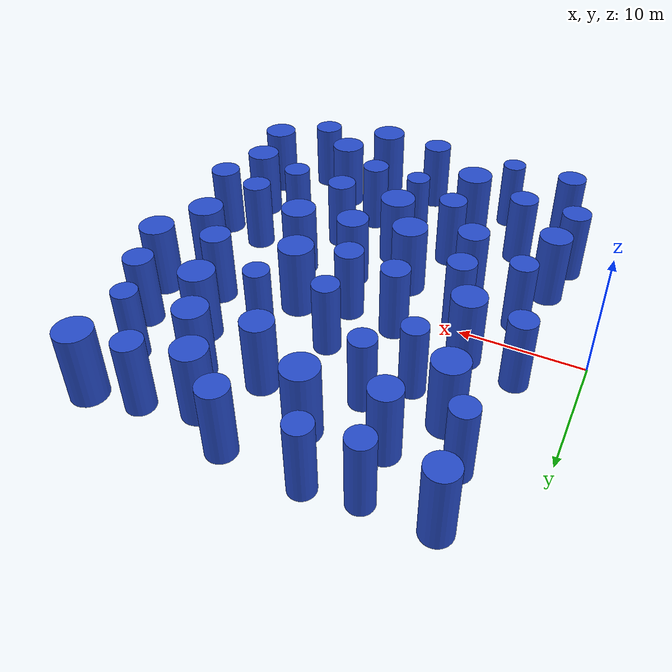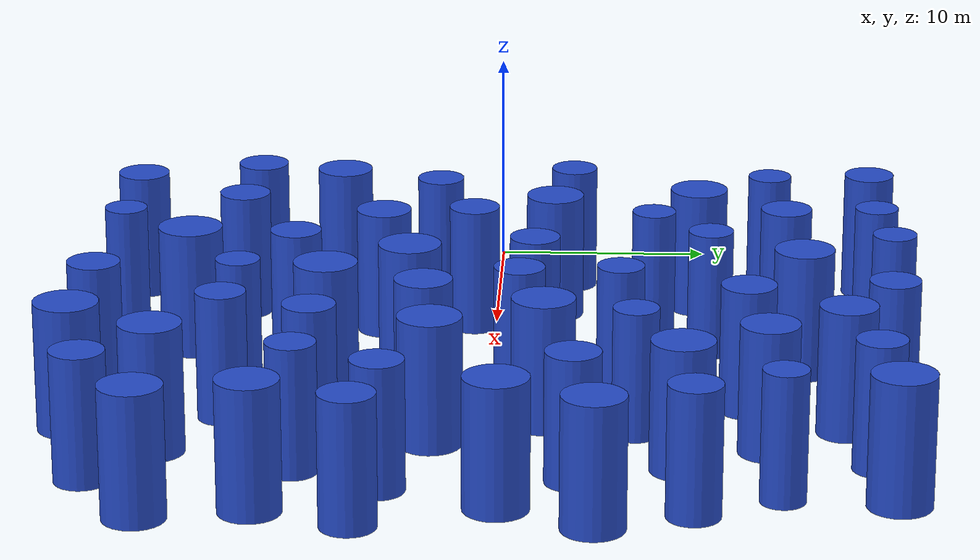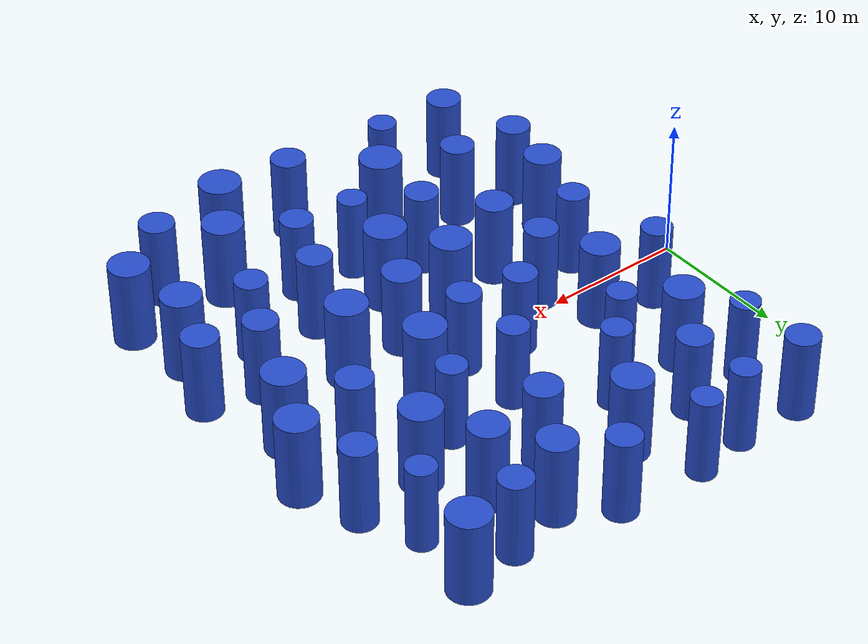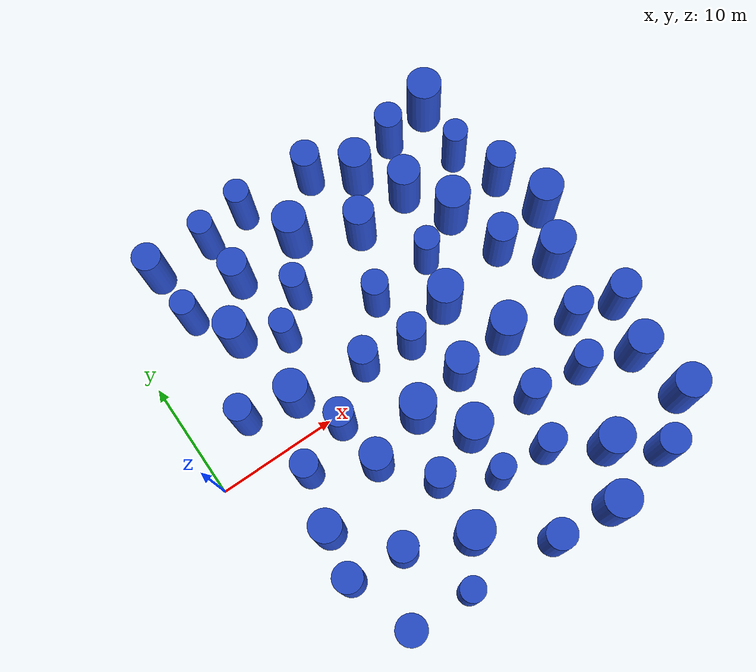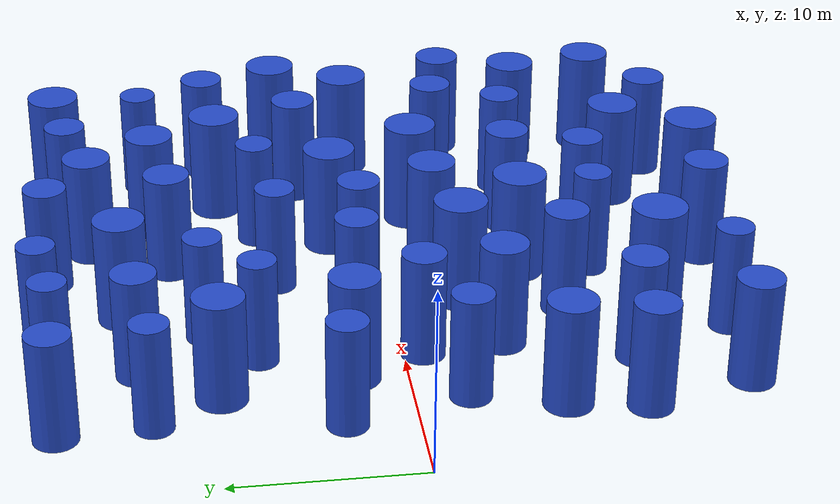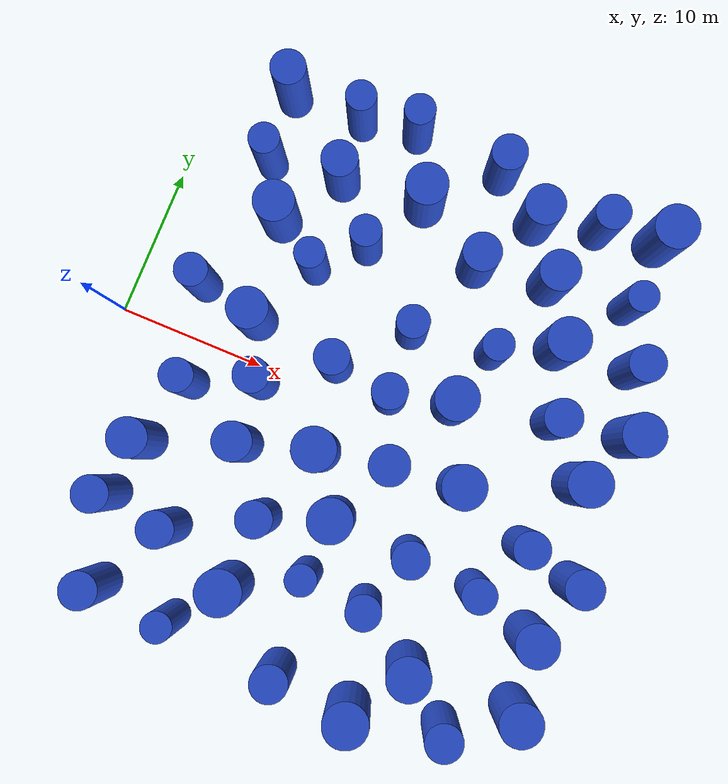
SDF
<sdf version="1.7">
 <world name="default">
  <model name="11">
   <static>1</static>
   <link name="link">
    <inertial>
     <mass>2</mass>
     <inertia><ixx>7.02995</ixx><ixy>0</ixy><ixz>0</ixz><iyy>7.02995</iyy><iyz>0</iyz><izz>2.0599</izz></inertia>
    </inertial>
    <collision name="collision">
     <geometry><cylinder><length>6</length><radius>1.43524</radius></cylinder></geometry>
     <surface><contact><collide_without_contact>1</collide_without_contact></contact></surface>
    </collision>
    <visual name="visual">
     <geometry><cylinder><length>6</length><radius>1.43524</radius></cylinder></geometry>
     <material>
      <script><uri>file://media/materials/scripts/gazebo.material</uri><name>Gazebo/Blue</name></script>
     </material>
    </visual>
    <gravity>0</gravity>
   </link>
   <pose>22.9935 2.50664 3 0 -0 0</pose>
  </model>
  <model name="13">
   <static>1</static>
   <link name="link">
    <inertial>
     <mass>2</mass>
     <inertia><ixx>6.67283</ixx><ixy>0</ixy><ixz>0</ixz><iyy>6.67283</iyy><iyz>0</iyz><izz>1.34566</izz></inertia>
    </inertial>
    <collision name="collision">
     <geometry><cylinder><length>6</length><radius>1.16003</radius></cylinder></geometry>
     <surface><contact><collide_without_contact>1</collide_without_contact></contact></surface>
    </collision>
    <visual name="visual">
     <geometry><cylinder><length>6</length><radius>1.16003</radius></cylinder></geometry>
     <material>
      <script><uri>file://media/materials/scripts/gazebo.material</uri><name>Gazebo/Blue</name></script>
     </material>
    </visual>
    <gravity>0</gravity>
   </link>
   <pose>14.8128 1.93175 3 0 -0 0</pose>
  </model>
  <model name="16">
   <static>1</static>
   <link name="link">
    <inertial>
     <mass>2</mass>
     <inertia><ixx>6.6557</ixx><ixy>0</ixy><ixz>0</ixz><iyy>6.6557</iyy><iyz>0</iyz><izz>1.3114</izz></inertia>
    </inertial>
    <collision name="collision">
     <geometry><cylinder><length>6</length><radius>1.14516</radius></cylinder></geometry>
     <surface><contact><collide_without_contact>1</collide_without_contact></contact></surface>
    </collision>
    <visual name="visual">
     <geometry><cylinder><length>6</length><radius>1.14516</radius></cylinder></geometry>
     <material>
      <script><uri>file://media/materials/scripts/gazebo.material</uri><name>Gazebo/Blue</name></script>
     </material>
    </visual>
    <gravity>0</gravity>
   </link>
   <pose>22.6505 -11.8133 3 0 -0 0</pose>
  </model>
  <model name="22">
   <static>1</static>
   <link name="link">
    <inertial>
     <mass>2</mass>
     <inertia><ixx>7.01181</ixx><ixy>0</ixy><ixz>0</ixz><iyy>7.01181</iyy><iyz>0</iyz><izz>2.02362</izz></inertia>
    </inertial>
    <collision name="collision">
     <geometry><cylinder><length>6</length><radius>1.42254</radius></cylinder></geometry>
     <surface><contact><collide_without_contact>1</collide_without_contact></contact></surface>
    </collision>
    <visual name="visual">
     <geometry><cylinder><length>6</length><radius>1.42254</radius></cylinder></geometry>
     <material>
      <script><uri>file://media/materials/scripts/gazebo.material</uri><name>Gazebo/Blue</name></script>
     </material>
    </visual>
    <gravity>0</gravity>
   </link>
   <pose>28.0346 8.60096 3 0 -0 0</pose>
  </model>
  <model name="24">
   <static>1</static>
   <link name="link">
    <inertial>
     <mass>2</mass>
     <inertia><ixx>6.90968</ixx><ixy>0</ixy><ixz>0</ixz><iyy>6.90968</iyy><iyz>0</iyz><izz>1.81936</izz></inertia>
    </inertial>
    <collision name="collision">
     <geometry><cylinder><length>6</length><radius>1.34884</radius></cylinder></geometry>
     <surface><contact><collide_without_contact>1</collide_without_contact></contact></surface>
    </collision>
    <visual name="visual">
     <geometry><cylinder><length>6</length><radius>1.34884</radius></cylinder></geometry>
     <material>
      <script><uri>file://media/materials/scripts/gazebo.material</uri><name>Gazebo/Blue</name></script>
     </material>
    </visual>
    <gravity>0</gravity>
   </link>
   <pose>8.75022 2.75537 3 0 -0 0</pose>
  </model>
  <model name="28">
   <static>1</static>
   <link name="link">
    <inertial>
     <mass>2</mass>
     <inertia><ixx>6.61083</ixx><ixy>0</ixy><ixz>0</ixz><iyy>6.61083</iyy><iyz>0</iyz><izz>1.22166</izz></inertia>
    </inertial>
    <collision name="collision">
     <geometry><cylinder><length>6</length><radius>1.10529</radius></cylinder></geometry>
     <surface><contact><collide_without_contact>1</collide_without_contact></contact></surface>
    </collision>
    <visual name="visual">
     <geometry><cylinder><length>6</length><radius>1.10529</radius></cylinder></geometry>
     <material>
      <script><uri>file://media/materials/scripts/gazebo.material</uri><name>Gazebo/Blue</name></script>
     </material>
    </visual>
    <gravity>0</gravity>
   </link>
   <pose>6.33318 -2.81082 3 0 -0 0</pose>
  </model>
  <model name="30">
   <static>1</static>
   <link name="link">
    <inertial>
     <mass>2</mass>
     <inertia><ixx>6.51988</ixx><ixy>0</ixy><ixz>0</ixz><iyy>6.51988</iyy><iyz>0</iyz><izz>1.03977</izz></inertia>
    </inertial>
    <collision name="collision">
     <geometry><cylinder><length>6</length><radius>1.01969</radius></cylinder></geometry>
     <surface><contact><collide_without_contact>1</collide_without_contact></contact></surface>
    </collision>
    <visual name="visual">
     <geometry><cylinder><length>6</length><radius>1.01969</radius></cylinder></geometry>
     <material>
      <script><uri>file://media/materials/scripts/gazebo.material</uri><name>Gazebo/Blue</name></script>
     </material>
    </visual>
    <gravity>0</gravity>
   </link>
   <pose>13.906 18.5337 3 0 -0 0</pose>
  </model>
  <model name="35">
   <static>1</static>
   <link name="link">
    <inertial>
     <mass>2</mass>
     <inertia><ixx>6.78663</ixx><ixy>0</ixy><ixz>0</ixz><iyy>6.78663</iyy><iyz>0</iyz><izz>1.57327</izz></inertia>
    </inertial>
    <collision name="collision">
     <geometry><cylinder><length>6</length><radius>1.2543</radius></cylinder></geometry>
     <surface><contact><collide_without_contact>1</collide_without_contact></contact></surface>
    </collision>
    <visual name="visual">
     <geometry><cylinder><length>6</length><radius>1.2543</radius></cylinder></geometry>
     <material>
      <script><uri>file://media/materials/scripts/gazebo.material</uri><name>Gazebo/Blue</name></script>
     </material>
    </visual>
    <gravity>0</gravity>
   </link>
   <pose>34.6176 -5.35558 3 0 -0 0</pose>
  </model>
  <model name="37">
   <static>1</static>
   <link name="link">
    <inertial>
     <mass>2</mass>
     <inertia><ixx>6.6503</ixx><ixy>0</ixy><ixz>0</ixz><iyy>6.6503</iyy><iyz>0</iyz><izz>1.30061</izz></inertia>
    </inertial>
    <collision name="collision">
     <geometry><cylinder><length>6</length><radius>1.14044</radius></cylinder></geometry>
     <surface><contact><collide_without_contact>1</collide_without_contact></contact></surface>
    </collision>
    <visual name="visual">
     <geometry><cylinder><length>6</length><radius>1.14044</radius></cylinder></geometry>
     <material>
      <script><uri>file://media/materials/scripts/gazebo.material</uri><name>Gazebo/Blue</name></script>
     </material>
    </visual>
    <gravity>0</gravity>
   </link>
   <pose>27.6058 17.0916 3 0 -0 0</pose>
  </model>
  <model name="39">
   <static>1</static>
   <link name="link">
    <inertial>
     <mass>2</mass>
     <inertia><ixx>6.71283</ixx><ixy>0</ixy><ixz>0</ixz><iyy>6.71283</iyy><iyz>0</iyz><izz>1.42566</izz></inertia>
    </inertial>
    <collision name="collision">
     <geometry><cylinder><length>6</length><radius>1.19401</radius></cylinder></geometry>
     <surface><contact><collide_without_contact>1</collide_without_contact></contact></surface>
    </collision>
    <visual name="visual">
     <geometry><cylinder><length>6</length><radius>1.19401</radius></cylinder></geometry>
     <material>
      <script><uri>file://media/materials/scripts/gazebo.material</uri><name>Gazebo/Blue</name></script>
     </material>
    </visual>
    <gravity>0</gravity>
   </link>
   <pose>4.34279 -11.5728 3 0 -0 0</pose>
  </model>
  <model name="46">
   <static>1</static>
   <link name="link">
    <inertial>
     <mass>2</mass>
     <inertia><ixx>7.11514</ixx><ixy>0</ixy><ixz>0</ixz><iyy>7.11514</iyy><iyz>0</iyz><izz>2.23028</izz></inertia>
    </inertial>
    <collision name="collision">
     <geometry><cylinder><length>6</length><radius>1.49341</radius></cylinder></geometry>
     <surface><contact><collide_without_contact>1</collide_without_contact></contact></surface>
    </collision>
    <visual name="visual">
     <geometry><cylinder><length>6</length><radius>1.49341</radius></cylinder></geometry>
     <material>
      <script><uri>file://media/materials/scripts/gazebo.material</uri><name>Gazebo/Blue</name></script>
     </material>
    </visual>
    <gravity>0</gravity>
   </link>
   <pose>13.9798 -14.1056 3 0 -0 0</pose>
  </model>
  <model name="47">
   <static>1</static>
   <link name="link">
    <inertial>
     <mass>2</mass>
     <inertia><ixx>7.03224</ixx><ixy>0</ixy><ixz>0</ixz><iyy>7.03224</iyy><iyz>0</iyz><izz>2.06447</izz></inertia>
    </inertial>
    <collision name="collision">
     <geometry><cylinder><length>6</length><radius>1.43683</radius></cylinder></geometry>
     <surface><contact><collide_without_contact>1</collide_without_contact></contact></surface>
    </collision>
    <visual name="visual">
     <geometry><cylinder><length>6</length><radius>1.43683</radius></cylinder></geometry>
     <material>
      <script><uri>file://media/materials/scripts/gazebo.material</uri><name>Gazebo/Blue</name></script>
     </material>
    </visual>
    <gravity>0</gravity>
   </link>
   <pose>31.6305 17.7655 3 0 -0 0</pose>
  </model>
  <model name="49">
   <static>1</static>
   <link name="link">
    <inertial>
     <mass>2</mass>
     <inertia><ixx>6.75214</ixx><ixy>0</ixy><ixz>0</ixz><iyy>6.75214</iyy><iyz>0</iyz><izz>1.50428</izz></inertia>
    </inertial>
    <collision name="collision">
     <geometry><cylinder><length>6</length><radius>1.22649</radius></cylinder></geometry>
     <surface><contact><collide_without_contact>1</collide_without_contact></contact></surface>
    </collision>
    <visual name="visual">
     <geometry><cylinder><length>6</length><radius>1.22649</radius></cylinder></geometry>
     <material>
      <script><uri>file://media/materials/scripts/gazebo.material</uri><name>Gazebo/Blue</name></script>
     </material>
    </visual>
    <gravity>0</gravity>
   </link>
   <pose>6.03836 -17.2467 3 0 -0 0</pose>
  </model>
  <model name="54">
   <static>1</static>
   <link name="link">
    <inertial>
     <mass>2</mass>
     <inertia><ixx>6.68343</ixx><ixy>0</ixy><ixz>0</ixz><iyy>6.68343</iyy><iyz>0</iyz><izz>1.36686</izz></inertia>
    </inertial>
    <collision name="collision">
     <geometry><cylinder><length>6</length><radius>1.16913</radius></cylinder></geometry>
     <surface><contact><collide_without_contact>1</collide_without_contact></contact></surface>
    </collision>
    <visual name="visual">
     <geometry><cylinder><length>6</length><radius>1.16913</radius></cylinder></geometry>
     <material>
      <script><uri>file://media/materials/scripts/gazebo.material</uri><name>Gazebo/Blue</name></script>
     </material>
    </visual>
    <gravity>0</gravity>
   </link>
   <pose>20.172 18.1497 3 0 -0 0</pose>
  </model>
  <model name="55">
   <static>1</static>
   <link name="link">
    <inertial>
     <mass>2</mass>
     <inertia><ixx>6.71688</ixx><ixy>0</ixy><ixz>0</ixz><iyy>6.71688</iyy><iyz>0</iyz><izz>1.43376</izz></inertia>
    </inertial>
    <collision name="collision">
     <geometry><cylinder><length>6</length><radius>1.1974</radius></cylinder></geometry>
     <surface><contact><collide_without_contact>1</collide_without_contact></contact></surface>
    </collision>
    <visual name="visual">
     <geometry><cylinder><length>6</length><radius>1.1974</radius></cylinder></geometry>
     <material>
      <script><uri>file://media/materials/scripts/gazebo.material</uri><name>Gazebo/Blue</name></script>
     </material>
    </visual>
    <gravity>0</gravity>
   </link>
   <pose>8.90747 -12.0492 3 0 -0 0</pose>
  </model>
  <model name="59">
   <static>1</static>
   <link name="link">
    <inertial>
     <mass>2</mass>
     <inertia><ixx>6.71629</ixx><ixy>0</ixy><ixz>0</ixz><iyy>6.71629</iyy><iyz>0</iyz><izz>1.43258</izz></inertia>
    </inertial>
    <collision name="collision">
     <geometry><cylinder><length>6</length><radius>1.1969</radius></cylinder></geometry>
     <surface><contact><collide_without_contact>1</collide_without_contact></contact></surface>
    </collision>
    <visual name="visual">
     <geometry><cylinder><length>6</length><radius>1.1969</radius></cylinder></geometry>
     <material>
      <script><uri>file://media/materials/scripts/gazebo.material</uri><name>Gazebo/Blue</name></script>
     </material>
    </visual>
    <gravity>0</gravity>
   </link>
   <pose>10.4298 13.6728 3 0 -0 0</pose>
  </model>
  <model name="60">
   <static>1</static>
   <link name="link">
    <inertial>
     <mass>2</mass>
     <inertia><ixx>7.05343</ixx><ixy>0</ixy><ixz>0</ixz><iyy>7.05343</iyy><iyz>0</iyz><izz>2.10687</izz></inertia>
    </inertial>
    <collision name="collision">
     <geometry><cylinder><length>6</length><radius>1.45151</radius></cylinder></geometry>
     <surface><contact><collide_without_contact>1</collide_without_contact></contact></surface>
    </collision>
    <visual name="visual">
     <geometry><cylinder><length>6</length><radius>1.45151</radius></cylinder></geometry>
     <material>
      <script><uri>file://media/materials/scripts/gazebo.material</uri><name>Gazebo/Blue</name></script>
     </material>
    </visual>
    <gravity>0</gravity>
   </link>
   <pose>15.9973 -3.78561 3 0 -0 0</pose>
  </model>
  <model name="61">
   <static>1</static>
   <link name="link">
    <inertial>
     <mass>2</mass>
     <inertia><ixx>6.52127</ixx><ixy>0</ixy><ixz>0</ixz><iyy>6.52127</iyy><iyz>0</iyz><izz>1.04254</izz></inertia>
    </inertial>
    <collision name="collision">
     <geometry><cylinder><length>6</length><radius>1.02105</radius></cylinder></geometry>
     <surface><contact><collide_without_contact>1</collide_without_contact></contact></surface>
    </collision>
    <visual name="visual">
     <geometry><cylinder><length>6</length><radius>1.02105</radius></cylinder></geometry>
     <material>
      <script><uri>file://media/materials/scripts/gazebo.material</uri><name>Gazebo/Blue</name></script>
     </material>
    </visual>
    <gravity>0</gravity>
   </link>
   <pose>18.3576 -11.4644 3 0 -0 0</pose>
  </model>
  <model name="65">
   <static>1</static>
   <link name="link">
    <inertial>
     <mass>2</mass>
     <inertia><ixx>6.52052</ixx><ixy>0</ixy><ixz>0</ixz><iyy>6.52052</iyy><iyz>0</iyz><izz>1.04104</izz></inertia>
    </inertial>
    <collision name="collision">
     <geometry><cylinder><length>6</length><radius>1.02032</radius></cylinder></geometry>
     <surface><contact><collide_without_contact>1</collide_without_contact></contact></surface>
    </collision>
    <visual name="visual">
     <geometry><cylinder><length>6</length><radius>1.02032</radius></cylinder></geometry>
     <material>
      <script><uri>file://media/materials/scripts/gazebo.material</uri><name>Gazebo/Blue</name></script>
     </material>
    </visual>
    <gravity>0</gravity>
   </link>
   <pose>5.51764 13.0563 3 0 -0 0</pose>
  </model>
  <model name="66">
   <static>1</static>
   <link name="link">
    <inertial>
     <mass>2</mass>
     <inertia><ixx>6.58357</ixx><ixy>0</ixy><ixz>0</ixz><iyy>6.58357</iyy><iyz>0</iyz><izz>1.16715</izz></inertia>
    </inertial>
    <collision name="collision">
     <geometry><cylinder><length>6</length><radius>1.08035</radius></cylinder></geometry>
     <surface><contact><collide_without_contact>1</collide_without_contact></contact></surface>
    </collision>
    <visual name="visual">
     <geometry><cylinder><length>6</length><radius>1.08035</radius></cylinder></geometry>
     <material>
      <script><uri>file://media/materials/scripts/gazebo.material</uri><name>Gazebo/Blue</name></script>
     </material>
    </visual>
    <gravity>0</gravity>
   </link>
   <pose>18.6407 5.9061 3 0 -0 0</pose>
  </model>
  <model name="75">
   <static>1</static>
   <link name="link">
    <inertial>
     <mass>2</mass>
     <inertia><ixx>6.99362</ixx><ixy>0</ixy><ixz>0</ixz><iyy>6.99362</iyy><iyz>0</iyz><izz>1.98725</izz></inertia>
    </inertial>
    <collision name="collision">
     <geometry><cylinder><length>6</length><radius>1.4097</radius></cylinder></geometry>
     <surface><contact><collide_without_contact>1</collide_without_contact></contact></surface>
    </collision>
    <visual name="visual">
     <geometry><cylinder><length>6</length><radius>1.4097</radius></cylinder></geometry>
     <material>
      <script><uri>file://media/materials/scripts/gazebo.material</uri><name>Gazebo/Blue</name></script>
     </material>
    </visual>
    <gravity>0</gravity>
   </link>
   <pose>34.0801 -14.3724 3 0 -0 0</pose>
  </model>
  <model name="76">
   <static>1</static>
   <link name="link">
    <inertial>
     <mass>2</mass>
     <inertia><ixx>6.82305</ixx><ixy>0</ixy><ixz>0</ixz><iyy>6.82305</iyy><iyz>0</iyz><izz>1.64611</izz></inertia>
    </inertial>
    <collision name="collision">
     <geometry><cylinder><length>6</length><radius>1.28301</radius></cylinder></geometry>
     <surface><contact><collide_without_contact>1</collide_without_contact></contact></surface>
    </collision>
    <visual name="visual">
     <geometry><cylinder><length>6</length><radius>1.28301</radius></cylinder></geometry>
     <material>
      <script><uri>file://media/materials/scripts/gazebo.material</uri><name>Gazebo/Blue</name></script>
     </material>
    </visual>
    <gravity>0</gravity>
   </link>
   <pose>11.1355 -5.26871 3 0 -0 0</pose>
  </model>
  <model name="77">
   <static>1</static>
   <link name="link">
    <inertial>
     <mass>2</mass>
     <inertia><ixx>6.68907</ixx><ixy>0</ixy><ixz>0</ixz><iyy>6.68907</iyy><iyz>0</iyz><izz>1.37813</izz></inertia>
    </inertial>
    <collision name="collision">
     <geometry><cylinder><length>6</length><radius>1.17394</radius></cylinder></geometry>
     <surface><contact><collide_without_contact>1</collide_without_contact></contact></surface>
    </collision>
    <visual name="visual">
     <geometry><cylinder><length>6</length><radius>1.17394</radius></cylinder></geometry>
     <material>
      <script><uri>file://media/materials/scripts/gazebo.material</uri><name>Gazebo/Blue</name></script>
     </material>
    </visual>
    <gravity>0</gravity>
   </link>
   <pose>5.14697 17.8593 3 0 -0 0</pose>
  </model>
  <model name="78">
   <static>1</static>
   <link name="link">
    <inertial>
     <mass>2</mass>
     <inertia><ixx>6.53588</ixx><ixy>0</ixy><ixz>0</ixz><iyy>6.53588</iyy><iyz>0</iyz><izz>1.07176</izz></inertia>
    </inertial>
    <collision name="collision">
     <geometry><cylinder><length>6</length><radius>1.03526</radius></cylinder></geometry>
     <surface><contact><collide_without_contact>1</collide_without_contact></contact></surface>
    </collision>
    <visual name="visual">
     <geometry><cylinder><length>6</length><radius>1.03526</radius></cylinder></geometry>
     <material>
      <script><uri>file://media/materials/scripts/gazebo.material</uri><name>Gazebo/Blue</name></script>
     </material>
    </visual>
    <gravity>0</gravity>
   </link>
   <pose>24.0903 6.59059 3 0 -0 0</pose>
  </model>
  <model name="83">
   <static>1</static>
   <link name="link">
    <inertial>
     <mass>2</mass>
     <inertia><ixx>6.73037</ixx><ixy>0</ixy><ixz>0</ixz><iyy>6.73037</iyy><iyz>0</iyz><izz>1.46074</izz></inertia>
    </inertial>
    <collision name="collision">
     <geometry><cylinder><length>6</length><radius>1.20861</radius></cylinder></geometry>
     <surface><contact><collide_without_contact>1</collide_without_contact></contact></surface>
    </collision>
    <visual name="visual">
     <geometry><cylinder><length>6</length><radius>1.20861</radius></cylinder></geometry>
     <material>
      <script><uri>file://media/materials/scripts/gazebo.material</uri><name>Gazebo/Blue</name></script>
     </material>
    </visual>
    <gravity>0</gravity>
   </link>
   <pose>24.1146 -7.76792 3 0 -0 0</pose>
  </model>
  <model name="84">
   <static>1</static>
   <link name="link">
    <inertial>
     <mass>2</mass>
     <inertia><ixx>7.08801</ixx><ixy>0</ixy><ixz>0</ixz><iyy>7.08801</iyy><iyz>0</iyz><izz>2.17602</izz></inertia>
    </inertial>
    <collision name="collision">
     <geometry><cylinder><length>6</length><radius>1.47513</radius></cylinder></geometry>
     <surface><contact><collide_without_contact>1</collide_without_contact></contact></surface>
    </collision>
    <visual name="visual">
     <geometry><cylinder><length>6</length><radius>1.47513</radius></cylinder></geometry>
     <material>
      <script><uri>file://media/materials/scripts/gazebo.material</uri><name>Gazebo/Blue</name></script>
     </material>
    </visual>
    <gravity>0</gravity>
   </link>
   <pose>24.2383 -18.4566 3 0 -0 0</pose>
  </model>
  <model name="85">
   <static>1</static>
   <link name="link">
    <inertial>
     <mass>2</mass>
     <inertia><ixx>6.85722</ixx><ixy>0</ixy><ixz>0</ixz><iyy>6.85722</iyy><iyz>0</iyz><izz>1.71444</izz></inertia>
    </inertial>
    <collision name="collision">
     <geometry><cylinder><length>6</length><radius>1.30937</radius></cylinder></geometry>
     <surface><contact><collide_without_contact>1</collide_without_contact></contact></surface>
    </collision>
    <visual name="visual">
     <geometry><cylinder><length>6</length><radius>1.30937</radius></cylinder></geometry>
     <material>
      <script><uri>file://media/materials/scripts/gazebo.material</uri><name>Gazebo/Blue</name></script>
     </material>
    </visual>
    <gravity>0</gravity>
   </link>
   <pose>5.06667 -7.53008 3 0 -0 0</pose>
  </model>
  <model name="87">
   <static>1</static>
   <link name="link">
    <inertial>
     <mass>2</mass>
     <inertia><ixx>6.95358</ixx><ixy>0</ixy><ixz>0</ixz><iyy>6.95358</iyy><iyz>0</iyz><izz>1.90715</izz></inertia>
    </inertial>
    <collision name="collision">
     <geometry><cylinder><length>6</length><radius>1.381</radius></cylinder></geometry>
     <surface><contact><collide_without_contact>1</collide_without_contact></contact></surface>
    </collision>
    <visual name="visual">
     <geometry><cylinder><length>6</length><radius>1.381</radius></cylinder></geometry>
     <material>
      <script><uri>file://media/materials/scripts/gazebo.material</uri><name>Gazebo/Blue</name></script>
     </material>
    </visual>
    <gravity>0</gravity>
   </link>
   <pose>16.1304 14.2889 3 0 -0 0</pose>
  </model>
  <model name="88">
   <static>1</static>
   <link name="link">
    <inertial>
     <mass>2</mass>
     <inertia><ixx>6.63652</ixx><ixy>0</ixy><ixz>0</ixz><iyy>6.63652</iyy><iyz>0</iyz><izz>1.27303</izz></inertia>
    </inertial>
    <collision name="collision">
     <geometry><cylinder><length>6</length><radius>1.12829</radius></cylinder></geometry>
     <surface><contact><collide_without_contact>1</collide_without_contact></contact></surface>
    </collision>
    <visual name="visual">
     <geometry><cylinder><length>6</length><radius>1.12829</radius></cylinder></geometry>
     <material>
      <script><uri>file://media/materials/scripts/gazebo.material</uri><name>Gazebo/Blue</name></script>
     </material>
    </visual>
    <gravity>0</gravity>
   </link>
   <pose>28.8191 -8.17536 3 0 -0 0</pose>
  </model>
  <model name="89">
   <static>1</static>
   <link name="link">
    <inertial>
     <mass>2</mass>
     <inertia><ixx>7.05762</ixx><ixy>0</ixy><ixz>0</ixz><iyy>7.05762</iyy><iyz>0</iyz><izz>2.11524</izz></inertia>
    </inertial>
    <collision name="collision">
     <geometry><cylinder><length>6</length><radius>1.45439</radius></cylinder></geometry>
     <surface><contact><collide_without_contact>1</collide_without_contact></contact></surface>
    </collision>
    <visual name="visual">
     <geometry><cylinder><length>6</length><radius>1.45439</radius></cylinder></geometry>
     <material>
      <script><uri>file://media/materials/scripts/gazebo.material</uri><name>Gazebo/Blue</name></script>
     </material>
    </visual>
    <gravity>0</gravity>
   </link>
   <pose>32.5809 0.735671 3 0 -0 0</pose>
  </model>
  <model name="92">
   <static>1</static>
   <link name="link">
    <inertial>
     <mass>2</mass>
     <inertia><ixx>6.87917</ixx><ixy>0</ixy><ixz>0</ixz><iyy>6.87917</iyy><iyz>0</iyz><izz>1.75835</izz></inertia>
    </inertial>
    <collision name="collision">
     <geometry><cylinder><length>6</length><radius>1.32603</radius></cylinder></geometry>
     <surface><contact><collide_without_contact>1</collide_without_contact></contact></surface>
    </collision>
    <visual name="visual">
     <geometry><cylinder><length>6</length><radius>1.32603</radius></cylinder></geometry>
     <material>
      <script><uri>file://media/materials/scripts/gazebo.material</uri><name>Gazebo/Blue</name></script>
     </material>
    </visual>
    <gravity>0</gravity>
   </link>
   <pose>20.7053 -2.92397 3 0 -0 0</pose>
  </model>
  <model name="94">
   <static>1</static>
   <link name="link">
    <inertial>
     <mass>2</mass>
     <inertia><ixx>6.74672</ixx><ixy>0</ixy><ixz>0</ixz><iyy>6.74672</iyy><iyz>0</iyz><izz>1.49344</izz></inertia>
    </inertial>
    <collision name="collision">
     <geometry><cylinder><length>6</length><radius>1.22206</radius></cylinder></geometry>
     <surface><contact><collide_without_contact>1</collide_without_contact></contact></surface>
    </collision>
    <visual name="visual">
     <geometry><cylinder><length>6</length><radius>1.22206</radius></cylinder></geometry>
     <material>
      <script><uri>file://media/materials/scripts/gazebo.material</uri><name>Gazebo/Blue</name></script>
     </material>
    </visual>
    <gravity>0</gravity>
   </link>
   <pose>30.1594 -17.1327 3 0 -0 0</pose>
  </model>
  <model name="97">
   <static>1</static>
   <link name="link">
    <inertial>
     <mass>2</mass>
     <inertia><ixx>6.54157</ixx><ixy>0</ixy><ixz>0</ixz><iyy>6.54157</iyy><iyz>0</iyz><izz>1.08314</izz></inertia>
    </inertial>
    <collision name="collision">
     <geometry><cylinder><length>6</length><radius>1.04074</radius></cylinder></geometry>
     <surface><contact><collide_without_contact>1</collide_without_contact></contact></surface>
    </collision>
    <visual name="visual">
     <geometry><cylinder><length>6</length><radius>1.04074</radius></cylinder></geometry>
     <material>
      <script><uri>file://media/materials/scripts/gazebo.material</uri><name>Gazebo/Blue</name></script>
     </material>
    </visual>
    <gravity>0</gravity>
   </link>
   <pose>13.7083 10.0651 3 0 -0 0</pose>
  </model>
  <model name="100">
   <static>1</static>
   <link name="link">
    <inertial>
     <mass>2</mass>
     <inertia><ixx>6.88485</ixx><ixy>0</ixy><ixz>0</ixz><iyy>6.88485</iyy><iyz>0</iyz><izz>1.76971</izz></inertia>
    </inertial>
    <collision name="collision">
     <geometry><cylinder><length>6</length><radius>1.3303</radius></cylinder></geometry>
     <surface><contact><collide_without_contact>1</collide_without_contact></contact></surface>
    </collision>
    <visual name="visual">
     <geometry><cylinder><length>6</length><radius>1.3303</radius></cylinder></geometry>
     <material>
      <script><uri>file://media/materials/scripts/gazebo.material</uri><name>Gazebo/Blue</name></script>
     </material>
    </visual>
    <gravity>0</gravity>
   </link>
   <pose>25.8966 12.3892 3 0 -0 0</pose>
  </model>
  <model name="101">
   <static>1</static>
   <link name="link">
    <inertial>
     <mass>2</mass>
     <inertia><ixx>6.79264</ixx><ixy>0</ixy><ixz>0</ixz><iyy>6.79264</iyy><iyz>0</iyz><izz>1.58527</izz></inertia>
    </inertial>
    <collision name="collision">
     <geometry><cylinder><length>6</length><radius>1.25908</radius></cylinder></geometry>
     <surface><contact><collide_without_contact>1</collide_without_contact></contact></surface>
    </collision>
    <visual name="visual">
     <geometry><cylinder><length>6</length><radius>1.25908</radius></cylinder></geometry>
     <material>
      <script><uri>file://media/materials/scripts/gazebo.material</uri><name>Gazebo/Blue</name></script>
     </material>
    </visual>
    <gravity>0</gravity>
   </link>
   <pose>20.9657 11.61 3 0 -0 0</pose>
  </model>
  <model name="104">
   <static>1</static>
   <link name="link">
    <inertial>
     <mass>2</mass>
     <inertia><ixx>6.76937</ixx><ixy>0</ixy><ixz>0</ixz><iyy>6.76937</iyy><iyz>0</iyz><izz>1.53873</izz></inertia>
    </inertial>
    <collision name="collision">
     <geometry><cylinder><length>6</length><radius>1.24046</radius></cylinder></geometry>
     <surface><contact><collide_without_contact>1</collide_without_contact></contact></surface>
    </collision>
    <visual name="visual">
     <geometry><cylinder><length>6</length><radius>1.24046</radius></cylinder></geometry>
     <material>
      <script><uri>file://media/materials/scripts/gazebo.material</uri><name>Gazebo/Blue</name></script>
     </material>
    </visual>
    <gravity>0</gravity>
   </link>
   <pose>29.5133 3.91346 3 0 -0 0</pose>
  </model>
  <model name="106">
   <static>1</static>
   <link name="link">
    <inertial>
     <mass>2</mass>
     <inertia><ixx>6.74493</ixx><ixy>0</ixy><ixz>0</ixz><iyy>6.74493</iyy><iyz>0</iyz><izz>1.48986</izz></inertia>
    </inertial>
    <collision name="collision">
     <geometry><cylinder><length>6</length><radius>1.2206</radius></cylinder></geometry>
     <surface><contact><collide_without_contact>1</collide_without_contact></contact></surface>
    </collision>
    <visual name="visual">
     <geometry><cylinder><length>6</length><radius>1.2206</radius></cylinder></geometry>
     <material>
      <script><uri>file://media/materials/scripts/gazebo.material</uri><name>Gazebo/Blue</name></script>
     </material>
    </visual>
    <gravity>0</gravity>
   </link>
   <pose>18.9731 -17.9536 3 0 -0 0</pose>
  </model>
  <model name="107">
   <static>1</static>
   <link name="link">
    <inertial>
     <mass>2</mass>
     <inertia><ixx>6.51236</ixx><ixy>0</ixy><ixz>0</ixz><iyy>6.51236</iyy><iyz>0</iyz><izz>1.02472</izz></inertia>
    </inertial>
    <collision name="collision">
     <geometry><cylinder><length>6</length><radius>1.01228</radius></cylinder></geometry>
     <surface><contact><collide_without_contact>1</collide_without_contact></contact></surface>
    </collision>
    <visual name="visual">
     <geometry><cylinder><length>6</length><radius>1.01228</radius></cylinder></geometry>
     <material>
      <script><uri>file://media/materials/scripts/gazebo.material</uri><name>Gazebo/Blue</name></script>
     </material>
    </visual>
    <gravity>0</gravity>
   </link>
   <pose>10.1265 17.9279 3 0 -0 0</pose>
  </model>
  <model name="108">
   <static>1</static>
   <link name="link">
    <inertial>
     <mass>2</mass>
     <inertia><ixx>7.04577</ixx><ixy>0</ixy><ixz>0</ixz><iyy>7.04577</iyy><iyz>0</iyz><izz>2.09154</izz></inertia>
    </inertial>
    <collision name="collision">
     <geometry><cylinder><length>6</length><radius>1.44621</radius></cylinder></geometry>
     <surface><contact><collide_without_contact>1</collide_without_contact></contact></surface>
    </collision>
    <visual name="visual">
     <geometry><cylinder><length>6</length><radius>1.44621</radius></cylinder></geometry>
     <material>
      <script><uri>file://media/materials/scripts/gazebo.material</uri><name>Gazebo/Blue</name></script>
     </material>
    </visual>
    <gravity>0</gravity>
   </link>
   <pose>25.4724 -2.40408 3 0 -0 0</pose>
  </model>
  <model name="116">
   <static>1</static>
   <link name="link">
    <inertial>
     <mass>2</mass>
     <inertia><ixx>6.91462</ixx><ixy>0</ixy><ixz>0</ixz><iyy>6.91462</iyy><iyz>0</iyz><izz>1.82925</izz></inertia>
    </inertial>
    <collision name="collision">
     <geometry><cylinder><length>6</length><radius>1.3525</radius></cylinder></geometry>
     <surface><contact><collide_without_contact>1</collide_without_contact></contact></surface>
    </collision>
    <visual name="visual">
     <geometry><cylinder><length>6</length><radius>1.3525</radius></cylinder></geometry>
     <material>
      <script><uri>file://media/materials/scripts/gazebo.material</uri><name>Gazebo/Blue</name></script>
     </material>
    </visual>
    <gravity>0</gravity>
   </link>
   <pose>7.64065 9.61062 3 0 -0 0</pose>
  </model>
  <model name="122">
   <static>1</static>
   <link name="link">
    <inertial>
     <mass>2</mass>
     <inertia><ixx>6.59236</ixx><ixy>0</ixy><ixz>0</ixz><iyy>6.59236</iyy><iyz>0</iyz><izz>1.18472</izz></inertia>
    </inertial>
    <collision name="collision">
     <geometry><cylinder><length>6</length><radius>1.08845</radius></cylinder></geometry>
     <surface><contact><collide_without_contact>1</collide_without_contact></contact></surface>
    </collision>
    <visual name="visual">
     <geometry><cylinder><length>6</length><radius>1.08845</radius></cylinder></geometry>
     <material>
      <script><uri>file://media/materials/scripts/gazebo.material</uri><name>Gazebo/Blue</name></script>
     </material>
    </visual>
    <gravity>0</gravity>
   </link>
   <pose>4.56947 3.611 3 0 -0 0</pose>
  </model>
  <model name="124">
   <static>1</static>
   <link name="link">
    <inertial>
     <mass>2</mass>
     <inertia><ixx>7.015</ixx><ixy>0</ixy><ixz>0</ixz><iyy>7.015</iyy><iyz>0</iyz><izz>2.03001</izz></inertia>
    </inertial>
    <collision name="collision">
     <geometry><cylinder><length>6</length><radius>1.42478</radius></cylinder></geometry>
     <surface><contact><collide_without_contact>1</collide_without_contact></contact></surface>
    </collision>
    <visual name="visual">
     <geometry><cylinder><length>6</length><radius>1.42478</radius></cylinder></geometry>
     <material>
      <script><uri>file://media/materials/scripts/gazebo.material</uri><name>Gazebo/Blue</name></script>
     </material>
    </visual>
    <gravity>0</gravity>
   </link>
   <pose>26.7353 -14.4562 3 0 -0 0</pose>
  </model>
  <model name="130">
   <static>1</static>
   <link name="link">
    <inertial>
     <mass>2</mass>
     <inertia><ixx>6.5107</ixx><ixy>0</ixy><ixz>0</ixz><iyy>6.5107</iyy><iyz>0</iyz><izz>1.02139</izz></inertia>
    </inertial>
    <collision name="collision">
     <geometry><cylinder><length>6</length><radius>1.01064</radius></cylinder></geometry>
     <surface><contact><collide_without_contact>1</collide_without_contact></contact></surface>
    </collision>
    <visual name="visual">
     <geometry><cylinder><length>6</length><radius>1.01064</radius></cylinder></geometry>
     <material>
      <script><uri>file://media/materials/scripts/gazebo.material</uri><name>Gazebo/Blue</name></script>
     </material>
    </visual>
    <gravity>0</gravity>
   </link>
   <pose>31.2935 12.8528 3 0 -0 0</pose>
  </model>
  <model name="131">
   <static>1</static>
   <link name="link">
    <inertial>
     <mass>2</mass>
     <inertia><ixx>6.71047</ixx><ixy>0</ixy><ixz>0</ixz><iyy>6.71047</iyy><iyz>0</iyz><izz>1.42094</izz></inertia>
    </inertial>
    <collision name="collision">
     <geometry><cylinder><length>6</length><radius>1.19203</radius></cylinder></geometry>
     <surface><contact><collide_without_contact>1</collide_without_contact></contact></surface>
    </collision>
    <visual name="visual">
     <geometry><cylinder><length>6</length><radius>1.19203</radius></cylinder></geometry>
     <material>
      <script><uri>file://media/materials/scripts/gazebo.material</uri><name>Gazebo/Blue</name></script>
     </material>
    </visual>
    <gravity>0</gravity>
   </link>
   <pose>30.743 -4.35228 3 0 -0 0</pose>
  </model>
  <model name="132">
   <static>1</static>
   <link name="link">
    <inertial>
     <mass>2</mass>
     <inertia><ixx>6.70433</ixx><ixy>0</ixy><ixz>0</ixz><iyy>6.70433</iyy><iyz>0</iyz><izz>1.40866</izz></inertia>
    </inertial>
    <collision name="collision">
     <geometry><cylinder><length>6</length><radius>1.18687</radius></cylinder></geometry>
     <surface><contact><collide_without_contact>1</collide_without_contact></contact></surface>
    </collision>
    <visual name="visual">
     <geometry><cylinder><length>6</length><radius>1.18687</radius></cylinder></geometry>
     <material>
      <script><uri>file://media/materials/scripts/gazebo.material</uri><name>Gazebo/Blue</name></script>
     </material>
    </visual>
    <gravity>0</gravity>
   </link>
   <pose>14.2633 -9.1675 3 0 -0 0</pose>
  </model>
  <model name="133">
   <static>1</static>
   <link name="link">
    <inertial>
     <mass>2</mass>
     <inertia><ixx>6.50052</ixx><ixy>0</ixy><ixz>0</ixz><iyy>6.50052</iyy><iyz>0</iyz><izz>1.00105</izz></inertia>
    </inertial>
    <collision name="collision">
     <geometry><cylinder><length>6</length><radius>1.00052</radius></cylinder></geometry>
     <surface><contact><collide_without_contact>1</collide_without_contact></contact></surface>
    </collision>
    <visual name="visual">
     <geometry><cylinder><length>6</length><radius>1.00052</radius></cylinder></geometry>
     <material>
      <script><uri>file://media/materials/scripts/gazebo.material</uri><name>Gazebo/Blue</name></script>
     </material>
    </visual>
    <gravity>0</gravity>
   </link>
   <pose>11.3241 -17.4454 3 0 -0 0</pose>
  </model>
  <model name="136">
   <static>1</static>
   <link name="link">
    <inertial>
     <mass>2</mass>
     <inertia><ixx>6.98032</ixx><ixy>0</ixy><ixz>0</ixz><iyy>6.98032</iyy><iyz>0</iyz><izz>1.96063</izz></inertia>
    </inertial>
    <collision name="collision">
     <geometry><cylinder><length>6</length><radius>1.40023</radius></cylinder></geometry>
     <surface><contact><collide_without_contact>1</collide_without_contact></contact></surface>
    </collision>
    <visual name="visual">
     <geometry><cylinder><length>6</length><radius>1.40023</radius></cylinder></geometry>
     <material>
      <script><uri>file://media/materials/scripts/gazebo.material</uri><name>Gazebo/Blue</name></script>
     </material>
    </visual>
    <gravity>0</gravity>
   </link>
   <pose>33.2184 -9.60244 3 0 -0 0</pose>
  </model>
  <model name="138">
   <static>1</static>
   <link name="link">
    <inertial>
     <mass>2</mass>
     <inertia><ixx>7.00074</ixx><ixy>0</ixy><ixz>0</ixz><iyy>7.00074</iyy><iyz>0</iyz><izz>2.00147</izz></inertia>
    </inertial>
    <collision name="collision">
     <geometry><cylinder><length>6</length><radius>1.41473</radius></cylinder></geometry>
     <surface><contact><collide_without_contact>1</collide_without_contact></contact></surface>
    </collision>
    <visual name="visual">
     <geometry><cylinder><length>6</length><radius>1.41473</radius></cylinder></geometry>
     <material>
      <script><uri>file://media/materials/scripts/gazebo.material</uri><name>Gazebo/Blue</name></script>
     </material>
    </visual>
    <gravity>0</gravity>
   </link>
   <pose>34.5186 4.84441 3 0 -0 0</pose>
  </model>
  <model name="143">
   <static>1</static>
   <link name="link">
    <inertial>
     <mass>2</mass>
     <inertia><ixx>6.5159</ixx><ixy>0</ixy><ixz>0</ixz><iyy>6.5159</iyy><iyz>0</iyz><izz>1.03181</izz></inertia>
    </inertial>
    <collision name="collision">
     <geometry><cylinder><length>6</length><radius>1.01578</radius></cylinder></geometry>
     <surface><contact><collide_without_contact>1</collide_without_contact></contact></surface>
    </collision>
    <visual name="visual">
     <geometry><cylinder><length>6</length><radius>1.01578</radius></cylinder></geometry>
     <material>
      <script><uri>file://media/materials/scripts/gazebo.material</uri><name>Gazebo/Blue</name></script>
     </material>
    </visual>
    <gravity>0</gravity>
   </link>
   <pose>11.0011 7.44306 3 0 -0 0</pose>
  </model>
  <model name="150">
   <static>1</static>
   <link name="link">
    <inertial>
     <mass>2</mass>
     <inertia><ixx>6.68224</ixx><ixy>0</ixy><ixz>0</ixz><iyy>6.68224</iyy><iyz>0</iyz><izz>1.36447</izz></inertia>
    </inertial>
    <collision name="collision">
     <geometry><cylinder><length>6</length><radius>1.16811</radius></cylinder></geometry>
     <surface><contact><collide_without_contact>1</collide_without_contact></contact></surface>
    </collision>
    <visual name="visual">
     <geometry><cylinder><length>6</length><radius>1.16811</radius></cylinder></geometry>
     <material>
      <script><uri>file://media/materials/scripts/gazebo.material</uri><name>Gazebo/Blue</name></script>
     </material>
    </visual>
    <gravity>0</gravity>
   </link>
   <pose>18.9554 1.33093 3 0 -0 0</pose>
  </model>
  <model name="154">
   <static>1</static>
   <link name="link">
    <inertial>
     <mass>2</mass>
     <inertia><ixx>6.69147</ixx><ixy>0</ixy><ixz>0</ixz><iyy>6.69147</iyy><iyz>0</iyz><izz>1.38293</izz></inertia>
    </inertial>
    <collision name="collision">
     <geometry><cylinder><length>6</length><radius>1.17598</radius></cylinder></geometry>
     <surface><contact><collide_without_contact>1</collide_without_contact></contact></surface>
    </collision>
    <visual name="visual">
     <geometry><cylinder><length>6</length><radius>1.17598</radius></cylinder></geometry>
     <material>
      <script><uri>file://media/materials/scripts/gazebo.material</uri><name>Gazebo/Blue</name></script>
     </material>
    </visual>
    <gravity>0</gravity>
   </link>
   <pose>10.6091 -1.01581 3 0 -0 0</pose>
  </model>
  <model name="156">
   <static>1</static>
   <link name="link">
    <inertial>
     <mass>2</mass>
     <inertia><ixx>7.07336</ixx><ixy>0</ixy><ixz>0</ixz><iyy>7.07336</iyy><iyz>0</iyz><izz>2.14672</izz></inertia>
    </inertial>
    <collision name="collision">
     <geometry><cylinder><length>6</length><radius>1.46517</radius></cylinder></geometry>
     <surface><contact><collide_without_contact>1</collide_without_contact></contact></surface>
    </collision>
    <visual name="visual">
     <geometry><cylinder><length>6</length><radius>1.46517</radius></cylinder></geometry>
     <material>
      <script><uri>file://media/materials/scripts/gazebo.material</uri><name>Gazebo/Blue</name></script>
     </material>
    </visual>
    <gravity>0</gravity>
   </link>
   <pose>18.6174 -7.4595 3 0 -0 0</pose>
  </model>
  <model name="158">
   <static>1</static>
   <link name="link">
    <inertial>
     <mass>2</mass>
     <inertia><ixx>6.86772</ixx><ixy>0</ixy><ixz>0</ixz><iyy>6.86772</iyy><iyz>0</iyz><izz>1.73544</izz></inertia>
    </inertial>
    <collision name="collision">
     <geometry><cylinder><length>6</length><radius>1.31736</radius></cylinder></geometry>
     <surface><contact><collide_without_contact>1</collide_without_contact></contact></surface>
    </collision>
    <visual name="visual">
     <geometry><cylinder><length>6</length><radius>1.31736</radius></cylinder></geometry>
     <material>
      <script><uri>file://media/materials/scripts/gazebo.material</uri><name>Gazebo/Blue</name></script>
     </material>
    </visual>
    <gravity>0</gravity>
   </link>
   <pose>23.4905 15.9084 3 0 -0 0</pose>
  </model>
  <model name="161">
   <static>1</static>
   <link name="link">
    <inertial>
     <mass>2</mass>
     <inertia><ixx>6.71785</ixx><ixy>0</ixy><ixz>0</ixz><iyy>6.71785</iyy><iyz>0</iyz><izz>1.4357</izz></inertia>
    </inertial>
    <collision name="collision">
     <geometry><cylinder><length>6</length><radius>1.19821</radius></cylinder></geometry>
     <surface><contact><collide_without_contact>1</collide_without_contact></contact></surface>
    </collision>
    <visual name="visual">
     <geometry><cylinder><length>6</length><radius>1.19821</radius></cylinder></geometry>
     <material>
      <script><uri>file://media/materials/scripts/gazebo.material</uri><name>Gazebo/Blue</name></script>
     </material>
    </visual>
    <gravity>0</gravity>
   </link>
   <pose>33.0757 9.04527 3 0 -0 0</pose>
  </model>
 </world>
</sdf>
